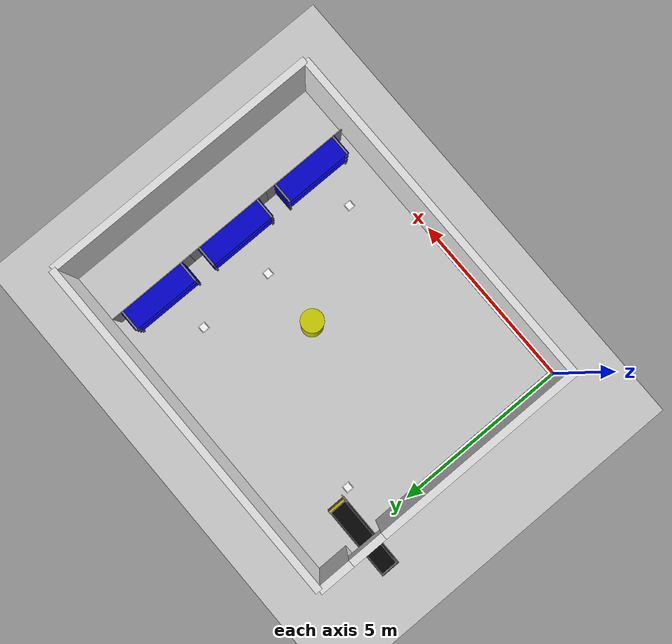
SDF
<?xml version="1.0" ?>
<sdf version="1.8">
  <world name="warehouse_level2">
    <physics name="1ms" type="ignored">
      <max_step_size>0.001</max_step_size>
      <real_time_factor>1.0</real_time_factor>
    </physics>
    <plugin filename="gz-sim-physics-system" name="gz::sim::systems::Physics" />
    <plugin filename="gz-sim-scene-broadcaster-system" name="gz::sim::systems::SceneBroadcaster">
    </plugin>
    <plugin filename="gz-sim-user-commands-system" name="gz::sim::systems::UserCommands">
    </plugin>
    <plugin filename="gz-sim-sensors-system" name="gz::sim::systems::Sensors">
      <render_engine>ogre2</render_engine>
    </plugin>
    <plugin filename="gz-sim-imu-system" name="gz::sim::systems::Imu">
    </plugin>

    <light type="directional" name="sun">
      <cast_shadows>true</cast_shadows>
      <pose>0 0 10 0 0 0</pose>
      <diffuse>0.8 0.8 0.8 1</diffuse>
      <specular>0.2 0.2 0.2 1</specular>
      <attenuation>
        <range>1000</range>
        <constant>0.9</constant>
        <linear>0.01</linear>
        <quadratic>0.001</quadratic>
      </attenuation>
      <direction>-0.5 0.1 -0.9</direction>
    </light>

    <model name="ground_plane">
      <static>true</static>
      <link name="link">
        <collision name="collision">
          <geometry><plane><normal>0 0 1</normal><size>100 100</size></plane></geometry>
        </collision>
        <visual name="visual">
          <geometry><plane><normal>0 0 1</normal><size>100 100</size></plane></geometry>
          <material>
            <ambient>0.8 0.8 0.8 1</ambient>
            <diffuse>0.8 0.8 0.8 1</diffuse>
            <specular>0.8 0.8 0.8 1</specular>
          </material>
        </visual>
      </link>
    </model>

    <!-- Walls -->
    <model name="walls">
      <static>true</static>
      <link name="wall_left">
        <pose>5 0 1 0 0 0</pose>
        <collision name="col_left"><geometry><box><size>10 0.2 2</size></box></geometry></collision>
        <visual name="vis_left"><geometry><box><size>10 0.2 2</size></box></geometry><material><ambient>0.9 0.9 0.9 1</ambient><diffuse>0.9 0.9 0.9 1</diffuse></material></visual>
      </link>
      <link name="wall_right">
        <pose>5 8 1 0 0 0</pose>
        <collision name="col_right"><geometry><box><size>10 0.2 2</size></box></geometry></collision>
        <visual name="vis_right"><geometry><box><size>10 0.2 2</size></box></geometry><material><ambient>0.9 0.9 0.9 1</ambient><diffuse>0.9 0.9 0.9 1</diffuse></material></visual>
      </link>
      <link name="wall_front_left">
        <pose>0 3 1 0 0 0</pose>
        <collision name="col_front_left"><geometry><box><size>0.2 6 2</size></box></geometry></collision>
        <visual name="vis_front_left"><geometry><box><size>0.2 6 2</size></box></geometry><material><ambient>0.9 0.9 0.9 1</ambient><diffuse>0.9 0.9 0.9 1</diffuse></material></visual>
      </link>
      <link name="wall_front_right">
        <pose>0 7.5 1 0 0 0</pose>
        <collision name="col_front_right"><geometry><box><size>0.2 1 2</size></box></geometry></collision>
        <visual name="vis_front_right"><geometry><box><size>0.2 1 2</size></box></geometry><material><ambient>0.9 0.9 0.9 1</ambient><diffuse>0.9 0.9 0.9 1</diffuse></material></visual>
      </link>
      <link name="wall_front_top">
        <pose>0 6.5 1.75 0 0 0</pose>
        <collision name="col_front_top"><geometry><box><size>0.2 1 0.5</size></box></geometry></collision>
        <visual name="vis_front_top"><geometry><box><size>0.2 1 0.5</size></box></geometry><material><ambient>0.9 0.9 0.9 1</ambient><diffuse>0.9 0.9 0.9 1</diffuse></material></visual>
      </link>
      <link name="wall_back">
        <pose>10 4 1 0 0 0</pose>
        <collision name="col_back"><geometry><box><size>0.2 8 2</size></box></geometry></collision>
        <visual name="vis_back"><geometry><box><size>0.2 8 2</size></box></geometry><material><ambient>0.9 0.9 0.9 1</ambient><diffuse>0.9 0.9 0.9 1</diffuse></material></visual>
      </link>
    </model>

    <!-- Obstacles -->
    <model name="pillar">
      <static>true</static>
      <pose>5 4 1 0 0 0</pose>
      <link name="link">
        <collision name="col"><geometry><cylinder><radius>0.3</radius><length>2</length></cylinder></geometry></collision>
        <visual name="vis"><geometry><cylinder><radius>0.3</radius><length>2</length></cylinder></geometry><material><ambient>0.8 0.8 0 1</ambient><diffuse>0.8 0.8 0 1</diffuse></material></visual>
      </link>
    </model>

    <!-- Storage Zone: Shelf -->
    <include>
      <uri>model://shelf</uri>
      <name>storage_shelf_1</name>
      <pose>8 4 0 0 0 1.5707</pose>
    </include>
    <include>
      <uri>model://shelf</uri>
      <name>storage_shelf_2</name>
      <pose>8 1.5 0 0 0 1.5707</pose>
    </include>
    <include>
      <uri>model://shelf</uri>
      <name>storage_shelf_3</name>
      <pose>8 6.5 0 0 0 1.5707</pose>
    </include>

    <!-- Conveyor belt: product delivery lane toward the reception side. -->
    <include>
      <uri>model://conveyor_belt</uri>
      <name>receiving_conveyor</name>
      <pose>0 6.5 0 0 0 0</pose>
    </include>

    <include>
      <uri>model://landmark_tags</uri>
      <name>landmark_tags</name>
      <pose>0 0 0 0 0 0</pose>
    </include>
  </world>
</sdf>

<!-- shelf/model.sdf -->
<sdf version="1.8">
  <model name="shelf">
    <static>true</static>
    <!-- Left Leg -->
    <link name="leg1">
      <pose>-0.95 0 0.55 0 0 0</pose>
      <collision name="col_leg1">
        <geometry><box><size>0.05 0.6 1.1</size></box></geometry>
      </collision>
      <visual name="vis_leg1">
        <geometry><box><size>0.05 0.6 1.1</size></box></geometry>
        <material><ambient>0.5 0.5 0.5 1</ambient><diffuse>0.5 0.5 0.5 1</diffuse></material>
      </visual>
    </link>
    <!-- Right Leg -->
    <link name="leg2">
      <pose>0.95 0 0.55 0 0 0</pose>
      <collision name="col_leg2">
        <geometry><box><size>0.05 0.6 1.1</size></box></geometry>
      </collision>
      <visual name="vis_leg2">
        <geometry><box><size>0.05 0.6 1.1</size></box></geometry>
        <material><ambient>0.5 0.5 0.5 1</ambient><diffuse>0.5 0.5 0.5 1</diffuse></material>
      </visual>
    </link>
    <!-- Level 1 (0.35m) -->
    <link name="level1">
      <pose>0 0 0.35 0 0 0</pose>
      <collision name="base_lidar_collision">
        <pose>0 0 -0.20 0 0 0</pose>
        <geometry><box><size>2.5 0.6 0.3</size></box></geometry>
      </collision>
      <collision name="col_level1">
        <geometry><box><size>2.0 0.6 0.05</size></box></geometry>
      </collision>
      <visual name="vis_level1">
        <geometry><box><size>2.0 0.6 0.05</size></box></geometry>
        <material><ambient>0 0 0.8 1</ambient><diffuse>0 0 0.8 1</diffuse></material>
      </visual>
    </link>
    <!-- Level 2 (0.70m) -->
    <link name="level2">
      <pose>0 0 0.70 0 0 0</pose>
      <collision name="col_level2">
        <geometry><box><size>2.0 0.6 0.05</size></box></geometry>
      </collision>
      <visual name="vis_level2">
        <geometry><box><size>2.0 0.6 0.05</size></box></geometry>
        <material><ambient>0 0 0.8 1</ambient><diffuse>0 0 0.8 1</diffuse></material>
      </visual>
    </link>
    <!-- Level 3 (1.05m) -->
    <link name="level3">
      <pose>0 0 1.05 0 0 0</pose>
      <collision name="col_level3">
        <geometry><box><size>2.0 0.6 0.05</size></box></geometry>
      </collision>
      <visual name="vis_level3">
        <geometry><box><size>2.0 0.6 0.05</size></box></geometry>
        <material><ambient>0 0 0.8 1</ambient><diffuse>0 0 0.8 1</diffuse></material>
      </visual>
    </link>
    <!-- Backboard -->
    <link name="backboard">
      <pose>0 -0.29 0.55 0 0 0</pose>
      <collision name="col_backboard">
        <geometry><box><size>2.5 0.02 1.1</size></box></geometry>
      </collision>
      <visual name="vis_backboard">
        <geometry><box><size>2.5 0.02 1.1</size></box></geometry>
        <material><ambient>0.6 0.6 0.6 1</ambient><diffuse>0.6 0.6 0.6 1</diffuse></material>
      </visual>
    </link>
  </model>
</sdf>

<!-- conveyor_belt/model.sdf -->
<sdf version="1.8">
  <model name="conveyor_belt">
    <static>true</static>
    <link name="base">
      <pose>0 0 0.05 0 0 0</pose>
      <collision name="base_collision">
        <geometry>
          <box><size>2.2 0.55 0.1</size></box>
        </geometry>
      </collision>
      <visual name="base_visual">
        <geometry>
          <box><size>2.2 0.55 0.1</size></box>
        </geometry>
        <material>
          <ambient>0.08 0.08 0.08 1</ambient>
          <diffuse>0.08 0.08 0.08 1</diffuse>
          <specular>0.25 0.25 0.25 1</specular>
        </material>
      </visual>
    </link>

    <link name="belt">
      <pose>0 0 0.27 0 0 0</pose>
      <collision name="belt_collision">
        <geometry>
          <box><size>2.0 0.45 0.04</size></box>
        </geometry>
        <surface>
          <friction>
            <ode>
              <mu>5.0</mu>
              <mu2>5.0</mu2>
              <fdir1>1 0 0</fdir1>
            </ode>
          </friction>
          <contact>
            <ode>
              <kp>1000000.0</kp>
              <kd>1.0</kd>
              <min_depth>0.001</min_depth>
            </ode>
          </contact>
        </surface>
      </collision>
      <visual name="belt_visual">
        <geometry>
          <box><size>2.0 0.45 0.04</size></box>
        </geometry>
        <material>
          <ambient>0.02 0.02 0.02 1</ambient>
          <diffuse>0.02 0.02 0.02 1</diffuse>
          <specular>0.12 0.12 0.12 1</specular>
        </material>
      </visual>
    </link>

    <link name="front_roller">
      <pose>0.98 0 0.17 1.5708 0 0</pose>
      <visual name="front_roller_visual">
        <geometry>
          <cylinder><radius>0.08</radius><length>0.5</length></cylinder>
        </geometry>
        <material>
          <ambient>0.55 0.55 0.55 1</ambient>
          <diffuse>0.55 0.55 0.55 1</diffuse>
        </material>
      </visual>
    </link>

    <link name="rear_roller">
      <pose>-0.98 0 0.17 1.5708 0 0</pose>
      <visual name="rear_roller_visual">
        <geometry>
          <cylinder><radius>0.08</radius><length>0.5</length></cylinder>
        </geometry>
        <material>
          <ambient>0.55 0.55 0.55 1</ambient>
          <diffuse>0.55 0.55 0.55 1</diffuse>
        </material>
      </visual>
    </link>

    <link name="pickup_stop">
      <pose>1.08 0 0.415 0 0 0</pose>
      <collision name="pickup_stop_collision">
        <geometry>
          <box><size>0.05 0.5 0.25</size></box>
        </geometry>
      </collision>
      <visual name="pickup_stop_visual">
        <geometry>
          <box><size>0.05 0.5 0.25</size></box>
        </geometry>
        <material>
          <ambient>0.8 0.7 0.05 1</ambient>
          <diffuse>0.8 0.7 0.05 1</diffuse>
        </material>
      </visual>
    </link>
  </model>
</sdf>

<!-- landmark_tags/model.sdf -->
<sdf version="1.8">
  <model name="landmark_tags">
    <static>true</static>

    <link name="conveyor_approach_tag">
      <pose>1.1 6.225 0.45 0 0 1.5708</pose>
      <visual name="back_plate">
        <geometry>
          <box><size>0.014 0.22 0.22</size></box>
        </geometry>
        <material>
          <ambient>1 1 1 1</ambient>
          <diffuse>1 1 1 1</diffuse>
          <specular>0.1 0.1 0.1 1</specular>
        </material>
      </visual>
      <visual name="tag_face">
        <pose>-0.0025 0 0 0 0 0</pose>
        <geometry>
          <box><size>0.002 0.18 0.18</size></box>
        </geometry>
        <material>
          <ambient>1 1 1 1</ambient>
          <diffuse>1 1 1 1</diffuse>
          <specular>0.1 0.1 0.1 1</specular>
          <pbr>
            <metal>
              <albedo_map>model://landmark_tags/materials/textures/apriltag_101.png</albedo_map>
              <roughness>0.8</roughness>
              <metalness>0.0</metalness>
            </metal>
          </pbr>
        </material>
      </visual>
    </link>

    <link name="conveyor_align_tag">
      <pose>1.2 6.0 0.001 0 0 0</pose>
      <visual name="back_plate">
        <geometry>
          <box><size>0.22 0.22 0.0015</size></box>
        </geometry>
        <material>
          <ambient>1 1 1 1</ambient>
          <diffuse>1 1 1 1</diffuse>
          <specular>0.1 0.1 0.1 1</specular>
        </material>
      </visual>
      <visual name="tag_face">
        <pose>0 0 0.0006 0 0 0</pose>
        <geometry>
          <box><size>0.18 0.18 0.0005</size></box>
        </geometry>
        <material>
          <ambient>1 1 1 1</ambient>
          <diffuse>1 1 1 1</diffuse>
          <specular>0.1 0.1 0.1 1</specular>
          <pbr>
            <metal>
              <albedo_map>model://landmark_tags/materials/textures/apriltag_102.png</albedo_map>
              <roughness>0.8</roughness>
              <metalness>0.0</metalness>
            </metal>
          </pbr>
        </material>
      </visual>
    </link>

    <link name="shelf_a_s1_approach_tag">
      <pose>8.29 1.20 0.45 0 0 0</pose>
      <visual name="back_plate">
        <geometry>
          <box><size>0.014 0.22 0.22</size></box>
        </geometry>
        <material>
          <ambient>1 1 1 1</ambient>
          <diffuse>1 1 1 1</diffuse>
          <specular>0.1 0.1 0.1 1</specular>
        </material>
      </visual>
      <visual name="tag_face">
        <pose>-0.0025 0 0 0 0 0</pose>
        <geometry>
          <box><size>0.002 0.18 0.18</size></box>
        </geometry>
        <material>
          <ambient>1 1 1 1</ambient>
          <diffuse>1 1 1 1</diffuse>
          <specular>0.1 0.1 0.1 1</specular>
          <pbr>
            <metal>
              <albedo_map>model://landmark_tags/materials/textures/apriltag_201.png</albedo_map>
              <roughness>0.8</roughness>
              <metalness>0.0</metalness>
            </metal>
          </pbr>
        </material>
      </visual>
    </link>

    <link name="shelf_a_s1_align_tag">
      <pose>6.8 1.2 0.001 0 0 0</pose>
      <visual name="back_plate">
        <geometry>
          <box><size>0.22 0.22 0.0015</size></box>
        </geometry>
        <material>
          <ambient>1 1 1 1</ambient>
          <diffuse>1 1 1 1</diffuse>
          <specular>0.1 0.1 0.1 1</specular>
        </material>
      </visual>
      <visual name="tag_face">
        <pose>0 0 0.0006 0 0 0</pose>
        <geometry>
          <box><size>0.18 0.18 0.0005</size></box>
        </geometry>
        <material>
          <ambient>1 1 1 1</ambient>
          <diffuse>1 1 1 1</diffuse>
          <specular>0.1 0.1 0.1 1</specular>
          <pbr>
            <metal>
              <albedo_map>model://landmark_tags/materials/textures/apriltag_202.png</albedo_map>
              <roughness>0.8</roughness>
              <metalness>0.0</metalness>
            </metal>
          </pbr>
        </material>
      </visual>
    </link>

    <link name="shelf_a_s2_approach_tag">
      <pose>8.29 4.0 0.45 0 0 0</pose>
      <visual name="back_plate">
        <geometry>
          <box><size>0.014 0.22 0.22</size></box>
        </geometry>
        <material>
          <ambient>1 1 1 1</ambient>
          <diffuse>1 1 1 1</diffuse>
          <specular>0.1 0.1 0.1 1</specular>
        </material>
      </visual>
      <visual name="tag_face">
        <pose>-0.0025 0 0 0 0 0</pose>
        <geometry>
          <box><size>0.002 0.18 0.18</size></box>
        </geometry>
        <material>
          <ambient>1 1 1 1</ambient>
          <diffuse>1 1 1 1</diffuse>
          <specular>0.1 0.1 0.1 1</specular>
          <pbr>
            <metal>
              <albedo_map>model://landmark_tags/materials/textures/apriltag_211.png</albedo_map>
              <roughness>0.8</roughness>
              <metalness>0.0</metalness>
            </metal>
          </pbr>
        </material>
      </visual>
    </link>

    <link name="shelf_a_s2_align_tag">
      <pose>6.8 4.0 0.001 0 0 0</pose>
      <visual name="back_plate">
        <geometry>
          <box><size>0.22 0.22 0.0015</size></box>
        </geometry>
        <material>
          <ambient>1 1 1 1</ambient>
          <diffuse>1 1 1 1</diffuse>
          <specular>0.1 0.1 0.1 1</specular>
        </material>
      </visual>
      <visual name="tag_face">
        <pose>0 0 0.0006 0 0 0</pose>
        <geometry>
          <box><size>0.18 0.18 0.0005</size></box>
        </geometry>
        <material>
          <ambient>1 1 1 1</ambient>
          <diffuse>1 1 1 1</diffuse>
          <specular>0.1 0.1 0.1 1</specular>
          <pbr>
            <metal>
              <albedo_map>model://landmark_tags/materials/textures/apriltag_212.png</albedo_map>
              <roughness>0.8</roughness>
              <metalness>0.0</metalness>
            </metal>
          </pbr>
        </material>
      </visual>
    </link>

    <link name="shelf_b_s1_approach_tag">
      <pose>8.29 6.2 0.45 0 0 0</pose>
      <visual name="back_plate">
        <geometry>
          <box><size>0.014 0.22 0.22</size></box>
        </geometry>
        <material>
          <ambient>1 1 1 1</ambient>
          <diffuse>1 1 1 1</diffuse>
          <specular>0.1 0.1 0.1 1</specular>
        </material>
      </visual>
      <visual name="tag_face">
        <pose>-0.0025 0 0 0 0 0</pose>
        <geometry>
          <box><size>0.002 0.18 0.18</size></box>
        </geometry>
        <material>
          <ambient>1 1 1 1</ambient>
          <diffuse>1 1 1 1</diffuse>
          <specular>0.1 0.1 0.1 1</specular>
          <pbr>
            <metal>
              <albedo_map>model://landmark_tags/materials/textures/apriltag_221.png</albedo_map>
              <roughness>0.8</roughness>
              <metalness>0.0</metalness>
            </metal>
          </pbr>
        </material>
      </visual>
    </link>

    <link name="shelf_b_s1_align_tag">
      <pose>6.8 6.2 0.001 0 0 0</pose>
      <visual name="back_plate">
        <geometry>
          <box><size>0.22 0.22 0.0015</size></box>
        </geometry>
        <material>
          <ambient>1 1 1 1</ambient>
          <diffuse>1 1 1 1</diffuse>
          <specular>0.1 0.1 0.1 1</specular>
        </material>
      </visual>
      <visual name="tag_face">
        <pose>0 0 0.0006 0 0 0</pose>
        <geometry>
          <box><size>0.18 0.18 0.0005</size></box>
        </geometry>
        <material>
          <ambient>1 1 1 1</ambient>
          <diffuse>1 1 1 1</diffuse>
          <specular>0.1 0.1 0.1 1</specular>
          <pbr>
            <metal>
              <albedo_map>model://landmark_tags/materials/textures/apriltag_222.png</albedo_map>
              <roughness>0.8</roughness>
              <metalness>0.0</metalness>
            </metal>
          </pbr>
        </material>
      </visual>
    </link>
  </model>
</sdf>
